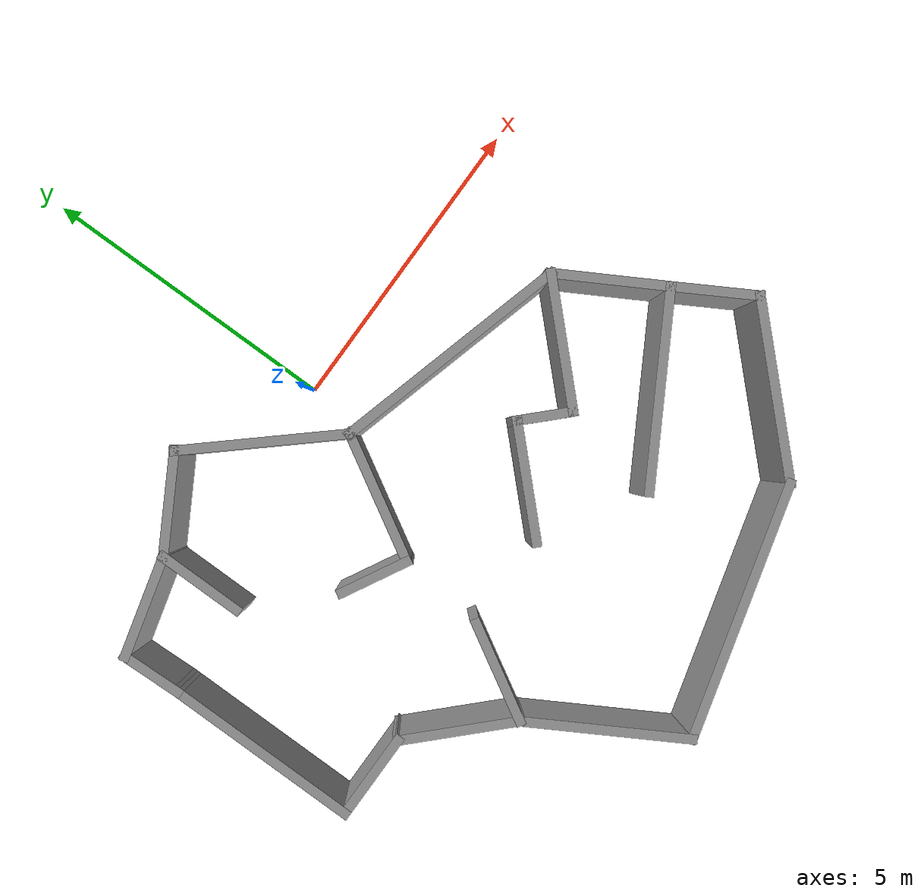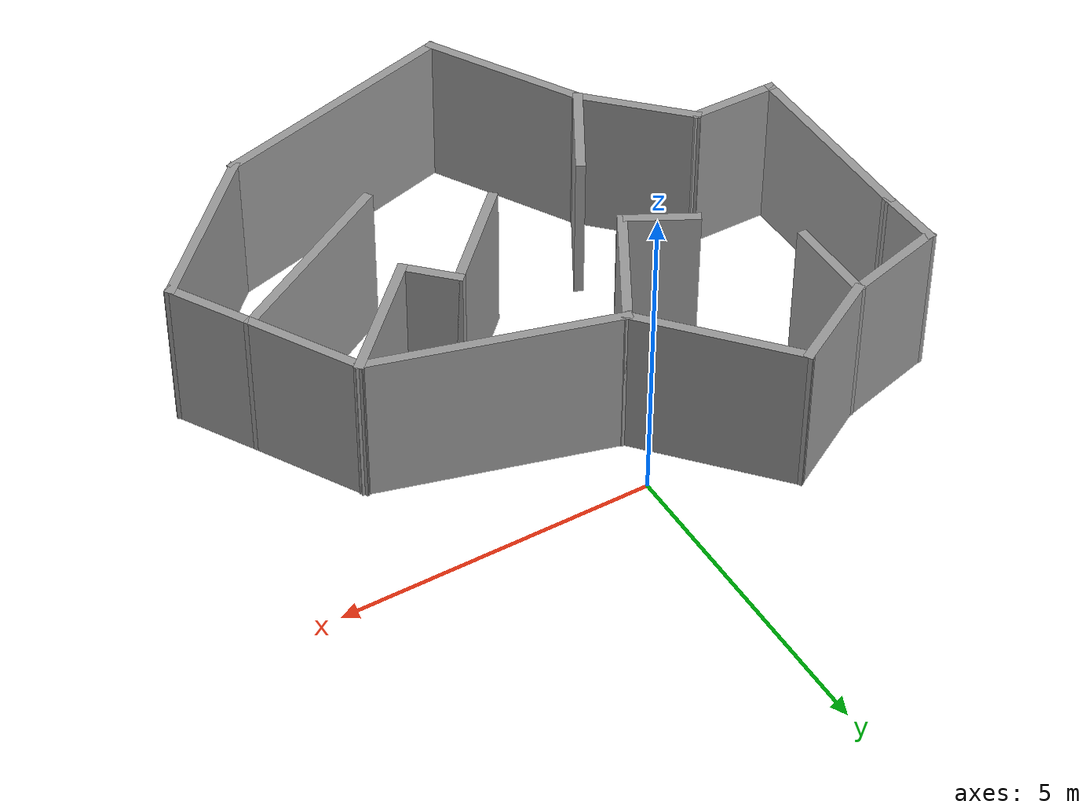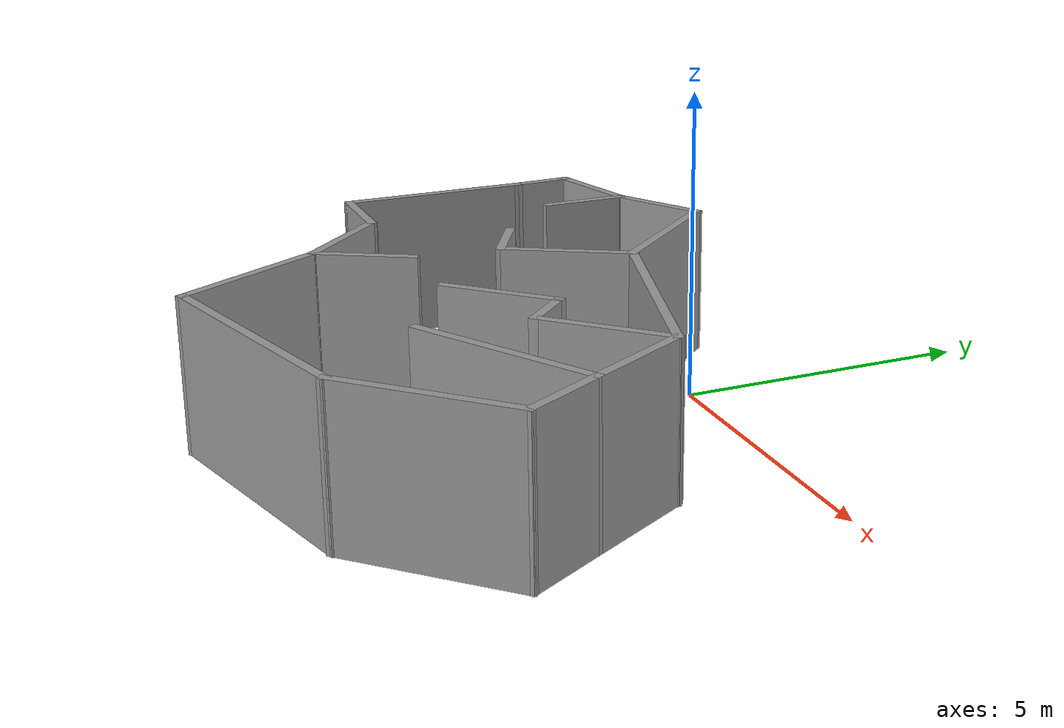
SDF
<?xml version='1.0'?>
<sdf version='1.7'>
  <model name='Simple'>
    <pose>0.126953 -3.37162 0 0 -0 0</pose>
    <link name='Wall_10'>
      <collision name='Wall_10_Collision'>
        <geometry>
          <box>
            <size>3.25 0.15 2.5</size>
          </box>
        </geometry>
        <pose>0 0 1.25 0 -0 0</pose>
      </collision>
      <visual name='Wall_10_Visual'>
        <pose>0 0 1.25 0 -0 0</pose>
        <geometry>
          <box>
            <size>3.25 0.15 2.5</size>
          </box>
        </geometry>
        <material>
          <script>
            <uri>file://media/materials/scripts/gazebo.material</uri>
            <name>Gazebo/Grey</name>
          </script>
          <ambient>1 1 1 1</ambient>
        </material>
        <meta>
          <layer>0</layer>
        </meta>
      </visual>
      <pose>2.95856 -0.942034 0 0 -0 -2.61799</pose>
    </link>
    <link name='Wall_12'>
      <collision name='Wall_12_Collision'>
        <geometry>
          <box>
            <size>2 0.15 2.5</size>
          </box>
        </geometry>
        <pose>0 0 1.25 0 -0 0</pose>
      </collision>
      <visual name='Wall_12_Visual'>
        <pose>0 0 1.25 0 -0 0</pose>
        <geometry>
          <box>
            <size>2 0.15 2.5</size>
          </box>
        </geometry>
        <material>
          <script>
            <uri>file://media/materials/scripts/gazebo.material</uri>
            <name>Gazebo/Grey</name>
          </script>
          <ambient>1 1 1 1</ambient>
        </material>
        <meta>
          <layer>0</layer>
        </meta>
      </visual>
      <pose>0.668147 -0.137961 0 0 -0 0.785398</pose>
    </link>
    <link name='Wall_13'>
      <collision name='Wall_13_Collision'>
        <geometry>
          <box>
            <size>1 0.15 2.5</size>
          </box>
        </geometry>
        <pose>0 0 1.25 0 -0 0</pose>
      </collision>
      <visual name='Wall_13_Visual'>
        <pose>0 0 1.25 0 -0 0</pose>
        <geometry>
          <box>
            <size>1 0.15 2.5</size>
          </box>
        </geometry>
        <material>
          <script>
            <uri>file://media/materials/scripts/gazebo.material</uri>
            <name>Gazebo/Grey</name>
          </script>
          <ambient>1 1 1 1</ambient>
        </material>
        <meta>
          <layer>0</layer>
        </meta>
      </visual>
      <pose>1.62274 0.215593 0 0 -0 -0.785398</pose>
    </link>
    <link name='Wall_14'>
      <collision name='Wall_14_Collision'>
        <geometry>
          <box>
            <size>2.25 0.15 2.5</size>
          </box>
        </geometry>
        <pose>0 0 1.25 0 -0 0</pose>
      </collision>
      <visual name='Wall_14_Visual'>
        <pose>0 0 1.25 0 -0 0</pose>
        <geometry>
          <box>
            <size>2.25 0.15 2.5</size>
          </box>
        </geometry>
        <material>
          <script>
            <uri>file://media/materials/scripts/gazebo.material</uri>
            <name>Gazebo/Grey</name>
          </script>
          <ambient>1 1 1 1</ambient>
        </material>
        <meta>
          <layer>0</layer>
        </meta>
      </visual>
      <pose>2.66572 0.657534 0 0 -0 0.785398</pose>
    </link>
    <link name='Wall_15'>
      <collision name='Wall_15_Collision'>
        <geometry>
          <box>
            <size>4.0092 0.15 2.5</size>
          </box>
        </geometry>
        <pose>0 0 1.25 0 -0 0</pose>
      </collision>
      <visual name='Wall_15_Visual'>
        <pose>0 0 1.25 0 -0 0</pose>
        <geometry>
          <box>
            <size>4.0092 0.15 2.5</size>
          </box>
        </geometry>
        <material>
          <script>
            <uri>file://media/materials/scripts/gazebo.material</uri>
            <name>Gazebo/Grey</name>
          </script>
          <ambient>1 1 1 1</ambient>
        </material>
        <meta>
          <layer>0</layer>
        </meta>
      </visual>
      <pose>1.54878 1.91571 0 0 -0 2.87104</pose>
    </link>
    <link name='Wall_17'>
      <collision name='Wall_17_Collision'>
        <geometry>
          <box>
            <size>1.23293 0.15 2.5</size>
          </box>
        </geometry>
        <pose>0 0 1.25 0 -0 0</pose>
      </collision>
      <visual name='Wall_17_Visual'>
        <pose>0 0 1.25 0 -0 0</pose>
        <geometry>
          <box>
            <size>1.23293 0.15 2.5</size>
          </box>
        </geometry>
        <material>
          <script>
            <uri>file://media/materials/scripts/gazebo.material</uri>
            <name>Gazebo/Grey</name>
          </script>
          <ambient>1 1 1 1</ambient>
        </material>
        <meta>
          <layer>0</layer>
        </meta>
      </visual>
      <pose>-1.83694 0.870286 0 0 -0 2.64597</pose>
    </link>
    <link name='Wall_19'>
      <collision name='Wall_19_Collision'>
        <geometry>
          <box>
            <size>1.5 0.15 2.5</size>
          </box>
        </geometry>
        <pose>0 0 1.25 0 -0 0</pose>
      </collision>
      <visual name='Wall_19_Visual'>
        <pose>0 0 1.25 0 -0 0</pose>
        <geometry>
          <box>
            <size>1.5 0.15 2.5</size>
          </box>
        </geometry>
        <material>
          <script>
            <uri>file://media/materials/scripts/gazebo.material</uri>
            <name>Gazebo/Grey</name>
          </script>
          <ambient>1 1 1 1</ambient>
        </material>
        <meta>
          <layer>0</layer>
        </meta>
      </visual>
      <pose>-3.44463 2.93417 0 0 -0 1.5708</pose>
    </link>
    <link name='Wall_20'>
      <collision name='Wall_20_Collision'>
        <geometry>
          <box>
            <size>1.75 0.15 2.5</size>
          </box>
        </geometry>
        <pose>0 0 1.25 0 -0 0</pose>
      </collision>
      <visual name='Wall_20_Visual'>
        <pose>0 0 1.25 0 -0 0</pose>
        <geometry>
          <box>
            <size>1.75 0.15 2.5</size>
          </box>
        </geometry>
        <material>
          <script>
            <uri>file://media/materials/scripts/gazebo.material</uri>
            <name>Gazebo/Grey</name>
          </script>
          <ambient>1 1 1 1</ambient>
        </material>
        <meta>
          <layer>0</layer>
        </meta>
      </visual>
      <pose>-4.21737 3.40211 0 0 -0 -2.87979</pose>
    </link>
    <link name='Wall_21'>
      <collision name='Wall_21_Collision'>
        <geometry>
          <box>
            <size>1.09838 0.15 2.5</size>
          </box>
        </geometry>
        <pose>0 0 1.25 0 -0 0</pose>
      </collision>
      <visual name='Wall_21_Visual'>
        <pose>0 0 1.25 0 -0 0</pose>
        <geometry>
          <box>
            <size>1.09838 0.15 2.5</size>
          </box>
        </geometry>
        <material>
          <script>
            <uri>file://media/materials/scripts/gazebo.material</uri>
            <name>Gazebo/Grey</name>
          </script>
          <ambient>1 1 1 1</ambient>
        </material>
        <meta>
          <layer>0</layer>
        </meta>
      </visual>
      <pose>-4.97395 2.72114 0 0 -0 -1.53672</pose>
    </link>
    <link name='Wall_23'>
      <collision name='Wall_23_Collision'>
        <geometry>
          <box>
            <size>1.75 0.15 2.5</size>
          </box>
        </geometry>
        <pose>0 0 1.25 0 -0 0</pose>
      </collision>
      <visual name='Wall_23_Visual'>
        <pose>0 0 1.25 0 -0 0</pose>
        <geometry>
          <box>
            <size>1.75 0.15 2.5</size>
          </box>
        </geometry>
        <material>
          <script>
            <uri>file://media/materials/scripts/gazebo.material</uri>
            <name>Gazebo/Grey</name>
          </script>
          <ambient>1 1 1 1</ambient>
        </material>
        <meta>
          <layer>0</layer>
        </meta>
      </visual>
      <pose>-2.75181 4.00917 0 0 -0 0.523599</pose>
    </link>
    <link name='Wall_24'>
      <collision name='Wall_24_Collision'>
        <geometry>
          <box>
            <size>2.78973 0.15 2.5</size>
          </box>
        </geometry>
        <pose>0 0 1.25 0 -0 0</pose>
      </collision>
      <visual name='Wall_24_Visual'>
        <pose>0 0 1.25 0 -0 0</pose>
        <geometry>
          <box>
            <size>2.78973 0.15 2.5</size>
          </box>
        </geometry>
        <material>
          <script>
            <uri>file://media/materials/scripts/gazebo.material</uri>
            <name>Gazebo/Grey</name>
          </script>
          <ambient>1 1 1 1</ambient>
        </material>
        <meta>
          <layer>0</layer>
        </meta>
      </visual>
      <pose>-1.18481 3.4203 0 0 -0 -0.846881</pose>
    </link>
    <link name='Wall_25'>
      <collision name='Wall_25_Collision'>
        <geometry>
          <box>
            <size>0.16 0.15 2.5</size>
          </box>
        </geometry>
        <pose>0 0 1.25 0 -0 0</pose>
      </collision>
      <visual name='Wall_25_Visual'>
        <pose>0 0 1.25 0 -0 0</pose>
        <geometry>
          <box>
            <size>0.16 0.15 2.5</size>
          </box>
        </geometry>
        <material>
          <script>
            <uri>file://media/materials/scripts/gazebo.material</uri>
            <name>Gazebo/Grey</name>
          </script>
          <ambient>0 0 0 1</ambient>
        </material>
        <meta>
          <layer>0</layer>
        </meta>
      </visual>
      <pose>-0.305629 2.43143 0 0 -0 0</pose>
    </link>
    <link name='Wall_26'>
      <collision name='Wall_26_Collision'>
        <geometry>
          <box>
            <size>2.25 0.15 2.5</size>
          </box>
        </geometry>
        <pose>0 0 1.25 0 -0 0</pose>
      </collision>
      <visual name='Wall_26_Visual'>
        <pose>0 0 1.25 0 -0 0</pose>
        <geometry>
          <box>
            <size>2.25 0.15 2.5</size>
          </box>
        </geometry>
        <material>
          <script>
            <uri>file://media/materials/scripts/gazebo.material</uri>
            <name>Gazebo/Grey</name>
          </script>
          <ambient>1 1 1 1</ambient>
        </material>
        <meta>
          <layer>0</layer>
        </meta>
      </visual>
      <pose>-0.835629 1.5221 0 0 -0 1.0472</pose>
    </link>
    <link name='Wall_27'>
      <collision name='Wall_27_Collision'>
        <geometry>
          <box>
            <size>0.15 0.15 2.5</size>
          </box>
        </geometry>
        <pose>0 0 1.25 0 -0 0</pose>
      </collision>
      <visual name='Wall_27_Visual'>
        <pose>0 0 1.25 0 -0 0</pose>
        <geometry>
          <box>
            <size>0.15 0.15 2.5</size>
          </box>
        </geometry>
        <material>
          <script>
            <uri>file://media/materials/scripts/gazebo.material</uri>
            <name>Gazebo/Grey</name>
          </script>
          <ambient>0 0 0 1</ambient>
        </material>
        <meta>
          <layer>0</layer>
        </meta>
      </visual>
      <pose>-0.310629 2.43143 0 0 -0 0</pose>
    </link>
    <link name='Wall_28'>
      <collision name='Wall_28_Collision'>
        <geometry>
          <box>
            <size>1.95348 0.15 2.5</size>
          </box>
        </geometry>
        <pose>0 0 1.25 0 -0 0</pose>
      </collision>
      <visual name='Wall_28_Visual'>
        <pose>0 0 1.25 0 -0 0</pose>
        <geometry>
          <box>
            <size>1.95348 0.15 2.5</size>
          </box>
        </geometry>
        <material>
          <script>
            <uri>file://media/materials/scripts/gazebo.material</uri>
            <name>Gazebo/Grey</name>
          </script>
          <ambient>1 1 1 1</ambient>
        </material>
        <meta>
          <layer>0</layer>
        </meta>
      </visual>
      <pose>3.85454 0.616481 0 0 -0 -1.05297</pose>
    </link>
    <link name='Wall_3'>
      <collision name='Wall_3_Collision'>
        <geometry>
          <box>
            <size>3.25 0.15 2.5</size>
          </box>
        </geometry>
        <pose>0 0 1.25 0 -0 0</pose>
      </collision>
      <visual name='Wall_3_Visual'>
        <pose>0 0 1.25 0 -0 0</pose>
        <geometry>
          <box>
            <size>3.25 0.15 2.5</size>
          </box>
        </geometry>
        <material>
          <script>
            <uri>file://media/materials/scripts/gazebo.material</uri>
            <name>Gazebo/Grey</name>
          </script>
          <ambient>1 1 1 1</ambient>
        </material>
        <meta>
          <layer>0</layer>
        </meta>
      </visual>
      <pose>-4.9578 0.697232 0 0 -0 -1.5708</pose>
    </link>
    <link name='Wall_30'>
      <collision name='Wall_30_Collision'>
        <geometry>
          <box>
            <size>1.75 0.15 2.5</size>
          </box>
        </geometry>
        <pose>0 0 1.25 0 -0 0</pose>
      </collision>
      <visual name='Wall_30_Visual'>
        <pose>0 0 1.25 0 -0 0</pose>
        <geometry>
          <box>
            <size>1.75 0.15 2.5</size>
          </box>
        </geometry>
        <material>
          <script>
            <uri>file://media/materials/scripts/gazebo.material</uri>
            <name>Gazebo/Grey</name>
          </script>
          <ambient>1 1 1 1</ambient>
        </material>
        <meta>
          <layer>0</layer>
        </meta>
      </visual>
      <pose>-1.89965 -1.46809 0 0 -0 1.0472</pose>
    </link>
    <link name='Wall_4'>
      <collision name='Wall_4_Collision'>
        <geometry>
          <box>
            <size>1.5 0.15 2.5</size>
          </box>
        </geometry>
        <pose>0 0 1.25 0 -0 0</pose>
      </collision>
      <visual name='Wall_4_Visual'>
        <pose>0 0 1.25 0 -0 0</pose>
        <geometry>
          <box>
            <size>1.5 0.15 2.5</size>
          </box>
        </geometry>
        <material>
          <script>
            <uri>file://media/materials/scripts/gazebo.material</uri>
            <name>Gazebo/Grey</name>
          </script>
          <ambient>1 1 1 1</ambient>
        </material>
        <meta>
          <layer>0</layer>
        </meta>
      </visual>
      <pose>-4.2828 -0.852768 0 0 -0 0</pose>
    </link>
    <link name='Wall_5'>
      <collision name='Wall_5_Collision'>
        <geometry>
          <box>
            <size>2 0.15 2.5</size>
          </box>
        </geometry>
        <pose>0 0 1.25 0 -0 0</pose>
      </collision>
      <visual name='Wall_5_Visual'>
        <pose>0 0 1.25 0 -0 0</pose>
        <geometry>
          <box>
            <size>2 0.15 2.5</size>
          </box>
        </geometry>
        <material>
          <script>
            <uri>file://media/materials/scripts/gazebo.material</uri>
            <name>Gazebo/Grey</name>
          </script>
          <ambient>1 1 1 1</ambient>
        </material>
        <meta>
          <layer>0</layer>
        </meta>
      </visual>
      <pose>-2.95372 -1.50684 0 0 -0 -0.785398</pose>
    </link>
    <link name='Wall_6'>
      <collision name='Wall_6_Collision'>
        <geometry>
          <box>
            <size>2.75 0.15 2.5</size>
          </box>
        </geometry>
        <pose>0 0 1.25 0 -0 0</pose>
      </collision>
      <visual name='Wall_6_Visual'>
        <pose>0 0 1.25 0 -0 0</pose>
        <geometry>
          <box>
            <size>2.75 0.15 2.5</size>
          </box>
        </geometry>
        <material>
          <script>
            <uri>file://media/materials/scripts/gazebo.material</uri>
            <name>Gazebo/Grey</name>
          </script>
          <ambient>1 1 1 1</ambient>
        </material>
        <meta>
          <layer>0</layer>
        </meta>
      </visual>
      <pose>-1.64965 -3.28675 0 0 -0 -1.0472</pose>
    </link>
    <link name='Wall_7'>
      <collision name='Wall_7_Collision'>
        <geometry>
          <box>
            <size>4.25 0.15 2.5</size>
          </box>
        </geometry>
        <pose>0 0 1.25 0 -0 0</pose>
      </collision>
      <visual name='Wall_7_Visual'>
        <pose>0 0 1.25 0 -0 0</pose>
        <geometry>
          <box>
            <size>4.25 0.15 2.5</size>
          </box>
        </geometry>
        <material>
          <script>
            <uri>file://media/materials/scripts/gazebo.material</uri>
            <name>Gazebo/Grey</name>
          </script>
          <ambient>1 1 1 1</ambient>
        </material>
        <meta>
          <layer>0</layer>
        </meta>
      </visual>
      <pose>0.980497 -3.882 0 0 -0 0.261799</pose>
    </link>
    <link name='Wall_8'>
      <collision name='Wall_8_Collision'>
        <geometry>
          <box>
            <size>3 0.15 2.5</size>
          </box>
        </geometry>
        <pose>0 0 1.25 0 -0 0</pose>
      </collision>
      <visual name='Wall_8_Visual'>
        <pose>0 0 1.25 0 -0 0</pose>
        <geometry>
          <box>
            <size>3 0.15 2.5</size>
          </box>
        </geometry>
        <material>
          <script>
            <uri>file://media/materials/scripts/gazebo.material</uri>
            <name>Gazebo/Grey</name>
          </script>
          <ambient>1 1 1 1</ambient>
        </material>
        <meta>
          <layer>0</layer>
        </meta>
      </visual>
      <pose>3.96827 -2.3438 0 0 -0 0.785398</pose>
    </link>
    <link name='Wall_9'>
      <collision name='Wall_9_Collision'>
        <geometry>
          <box>
            <size>1.5 0.15 2.5</size>
          </box>
        </geometry>
        <pose>0 0 1.25 0 -0 0</pose>
      </collision>
      <visual name='Wall_9_Visual'>
        <pose>0 0 1.25 0 -0 0</pose>
        <geometry>
          <box>
            <size>1.5 0.15 2.5</size>
          </box>
        </geometry>
        <material>
          <script>
            <uri>file://media/materials/scripts/gazebo.material</uri>
            <name>Gazebo/Grey</name>
          </script>
          <ambient>1 1 1 1</ambient>
        </material>
        <meta>
          <layer>0</layer>
        </meta>
      </visual>
      <pose>4.6384 -0.751602 0 0 -0 2.0944</pose>
    </link>
    <static>1</static>
  </model>
</sdf>
